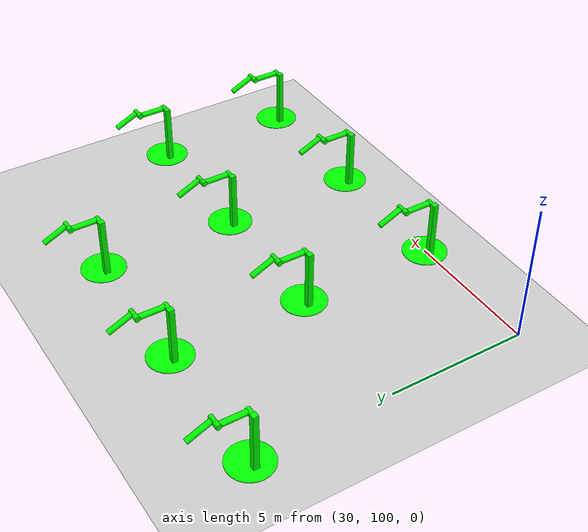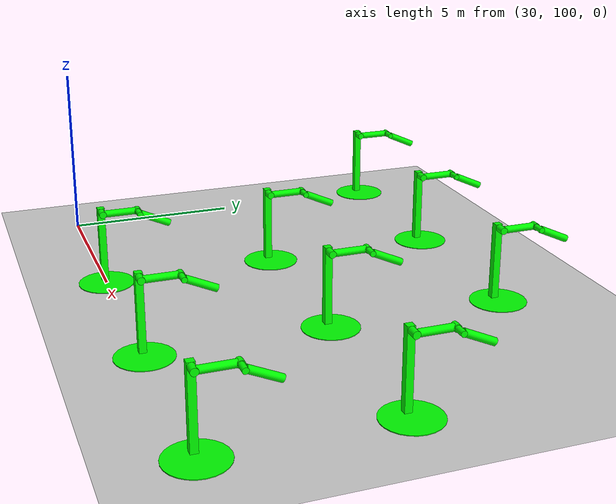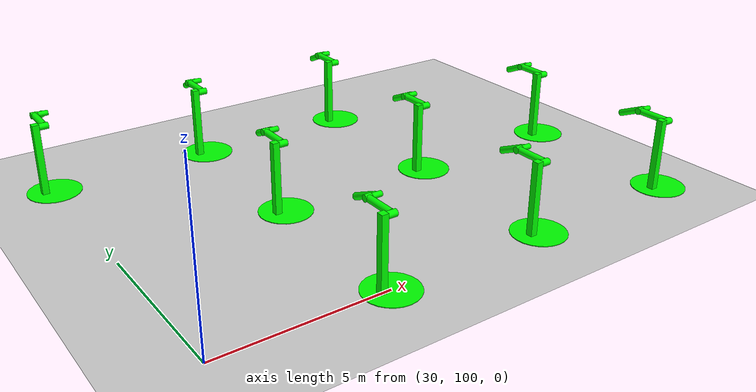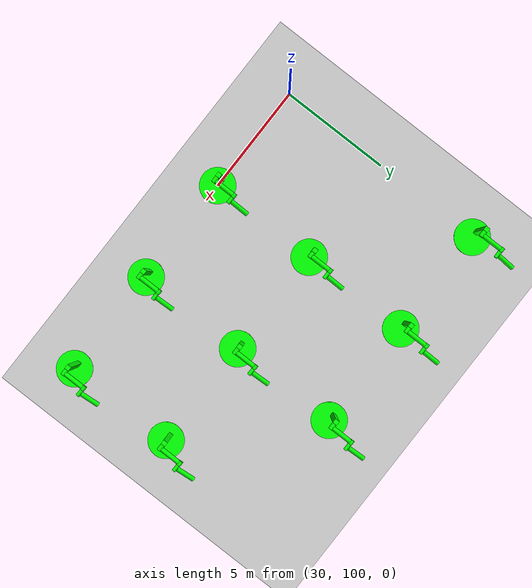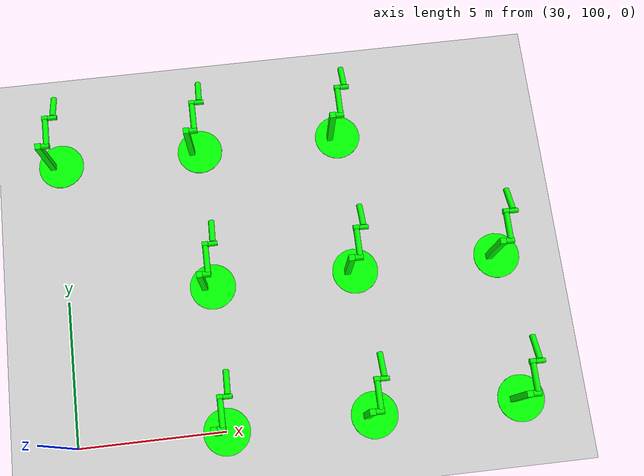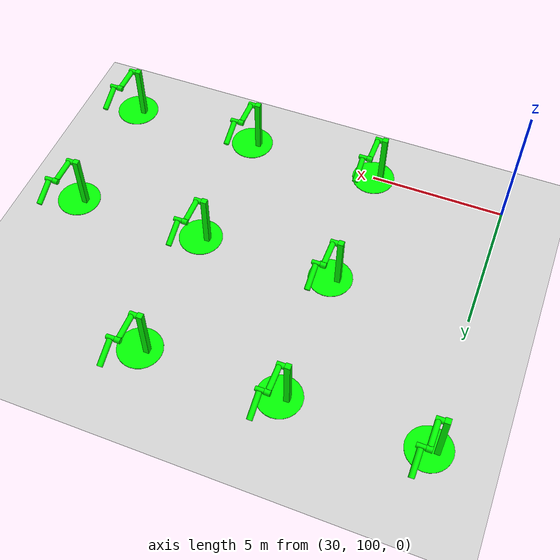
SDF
<sdf version="1.6">
 <world name="double_pendulums">
  <model name="ground_plane">
   <static>true</static>
   <link name="link">
    <collision name="collision">
     <geometry><plane><normal>0 0 1</normal><size>100 100</size></plane></geometry>
    </collision>
    <visual name="visual">
     <geometry><plane><normal>0 0 1</normal><size>100 100</size></plane></geometry>
     <material>
      <ambient>0.8 0.8 0.8 1</ambient>
      <diffuse>0.8 0.8 0.8 1</diffuse>
      <specular>0.8 0.8 0.8 1</specular>
     </material>
    </visual>
   </link>
  </model>
  <model name="dbl_pendulum_517">
   <pose>35 100 0 0 0 0</pose>
   <link name="base">
    <inertial><mass>100</mass></inertial>
    <visual name="vis_plate_on_ground">
     <pose>0 0 0.01 0 0 0</pose>
     <geometry><cylinder><radius>0.8</radius><length>0.02</length></cylinder></geometry>
     <material><ambient>0 1 0 1</ambient><diffuse>0 1 0 1</diffuse><specular>0 1 0 1</specular></material>
    </visual>
    <visual name="vis_pole">
     <pose>-0.275 0 1.1 0 0 0</pose>
     <geometry><box><size>0.2 0.2 2.2</size></box></geometry>
     <material><ambient>0 1 0 1</ambient><diffuse>0 1 0 1</diffuse><specular>0 1 0 1</specular></material>
    </visual>
    <collision name="col_plate_on_ground">
     <pose>0 0 0.01 0 0 0</pose>
     <geometry><cylinder><radius>0.8</radius><length>0.02</length></cylinder></geometry>
    </collision>
    <collision name="col_pole">
     <pose>-0.275 0 1.1 0 0 0</pose>
     <geometry><box><size>0.2 0.2 2.2</size></box></geometry>
    </collision>
   </link>
   <link name="upper_link">
    <pose>0 0 2.1 -1.5708 0 0</pose>
    <inertial><pose>0 0 0.5 0 0 0</pose></inertial>
    <visual name="vis_upper_joint">
     <pose>-0.05 0 0 0 1.5708 0</pose>
     <geometry><cylinder><radius>0.1</radius><length>0.3</length></cylinder></geometry>
     <material><ambient>0 1 0 1</ambient><diffuse>0 1 0 1</diffuse><specular>0 1 0 1</specular></material>
    </visual>
    <visual name="vis_lower_joint">
     <pose>0 0 1.0 0 1.5708 0</pose>
     <geometry><cylinder><radius>0.1</radius><length>0.2</length></cylinder></geometry>
     <material><ambient>0 1 0 1</ambient><diffuse>0 1 0 1</diffuse><specular>0 1 0 1</specular></material>
    </visual>
    <visual name="vis_cylinder">
     <pose>0 0 0.5 0 0 0</pose>
     <geometry><cylinder><radius>0.1</radius><length>0.9</length></cylinder></geometry>
     <material><ambient>0 1 0 1</ambient><diffuse>0 1 0 1</diffuse><specular>0 1 0 1</specular></material>
    </visual>
    <collision name="col_upper_joint">
     <pose>-0.05 0 0 0 1.5708 0</pose>
     <geometry><cylinder><radius>0.1</radius><length>0.3</length></cylinder></geometry>
    </collision>
    <collision name="col_lower_joint">
     <pose>0 0 1.0 0 1.5708 0</pose>
     <geometry><cylinder><radius>0.1</radius><length>0.2</length></cylinder></geometry>
    </collision>
    <collision name="col_cylinder">
     <pose>0 0 0.5 0 0 0</pose>
     <geometry><cylinder><radius>0.1</radius><length>0.9</length></cylinder></geometry>
    </collision>
   </link>
   <link name="lower_link">
    <pose>0.25 1.0 2.1 -2 0 0</pose>
    <inertial><pose>0 0 0.5 0 0 0</pose></inertial>
    <visual name="vis_lower_joint">
     <pose>0 0 0 0 1.5708 0</pose>
     <geometry><cylinder><radius>0.08</radius><length>0.3</length></cylinder></geometry>
     <material><ambient>0 1 0 1</ambient><diffuse>0 1 0 1</diffuse><specular>0 1 0 1</specular></material>
    </visual>
    <visual name="vis_cylinder">
     <pose>0 0 0.5 0 0 0</pose>
     <geometry><cylinder><radius>0.1</radius><length>0.9</length></cylinder></geometry>
     <material><ambient>0 1 0 1</ambient><diffuse>0 1 0 1</diffuse><specular>0 1 0 1</specular></material>
    </visual>
    <collision name="col_lower_joint">
     <pose>0 0 0 0 1.5708 0</pose>
     <geometry><cylinder><radius>0.08</radius><length>0.3</length></cylinder></geometry>
    </collision>
    <collision name="col_cylinder">
     <pose>0 0 0.5 0 0 0</pose>
     <geometry><cylinder><radius>0.1</radius><length>0.9</length></cylinder></geometry>
    </collision>
   </link>
   <joint name="upper_joint" type="revolute">
    <parent>base</parent>
    <child>upper_link</child>
    <axis><xyz>1.0 0 0</xyz></axis>
   </joint>
   <joint name="lower_joint" type="revolute">
    <parent>upper_link</parent>
    <child>lower_link</child>
    <axis><xyz>1.0 0 0</xyz></axis>
   </joint>
  </model>
  <model name="dbl_pendulum_518">
   <pose>40 100 0 0 0 0</pose>
   <link name="base">
    <inertial><mass>100</mass></inertial>
    <visual name="vis_plate_on_ground">
     <pose>0 0 0.01 0 0 0</pose>
     <geometry><cylinder><radius>0.8</radius><length>0.02</length></cylinder></geometry>
     <material><ambient>0 1 0 1</ambient><diffuse>0 1 0 1</diffuse><specular>0 1 0 1</specular></material>
    </visual>
    <visual name="vis_pole">
     <pose>-0.275 0 1.1 0 0 0</pose>
     <geometry><box><size>0.2 0.2 2.2</size></box></geometry>
     <material><ambient>0 1 0 1</ambient><diffuse>0 1 0 1</diffuse><specular>0 1 0 1</specular></material>
    </visual>
    <collision name="col_plate_on_ground">
     <pose>0 0 0.01 0 0 0</pose>
     <geometry><cylinder><radius>0.8</radius><length>0.02</length></cylinder></geometry>
    </collision>
    <collision name="col_pole">
     <pose>-0.275 0 1.1 0 0 0</pose>
     <geometry><box><size>0.2 0.2 2.2</size></box></geometry>
    </collision>
   </link>
   <link name="upper_link">
    <pose>0 0 2.1 -1.5708 0 0</pose>
    <inertial><pose>0 0 0.5 0 0 0</pose></inertial>
    <visual name="vis_upper_joint">
     <pose>-0.05 0 0 0 1.5708 0</pose>
     <geometry><cylinder><radius>0.1</radius><length>0.3</length></cylinder></geometry>
     <material><ambient>0 1 0 1</ambient><diffuse>0 1 0 1</diffuse><specular>0 1 0 1</specular></material>
    </visual>
    <visual name="vis_lower_joint">
     <pose>0 0 1.0 0 1.5708 0</pose>
     <geometry><cylinder><radius>0.1</radius><length>0.2</length></cylinder></geometry>
     <material><ambient>0 1 0 1</ambient><diffuse>0 1 0 1</diffuse><specular>0 1 0 1</specular></material>
    </visual>
    <visual name="vis_cylinder">
     <pose>0 0 0.5 0 0 0</pose>
     <geometry><cylinder><radius>0.1</radius><length>0.9</length></cylinder></geometry>
     <material><ambient>0 1 0 1</ambient><diffuse>0 1 0 1</diffuse><specular>0 1 0 1</specular></material>
    </visual>
    <collision name="col_upper_joint">
     <pose>-0.05 0 0 0 1.5708 0</pose>
     <geometry><cylinder><radius>0.1</radius><length>0.3</length></cylinder></geometry>
    </collision>
    <collision name="col_lower_joint">
     <pose>0 0 1.0 0 1.5708 0</pose>
     <geometry><cylinder><radius>0.1</radius><length>0.2</length></cylinder></geometry>
    </collision>
    <collision name="col_cylinder">
     <pose>0 0 0.5 0 0 0</pose>
     <geometry><cylinder><radius>0.1</radius><length>0.9</length></cylinder></geometry>
    </collision>
   </link>
   <link name="lower_link">
    <pose>0.25 1.0 2.1 -2 0 0</pose>
    <inertial><pose>0 0 0.5 0 0 0</pose></inertial>
    <visual name="vis_lower_joint">
     <pose>0 0 0 0 1.5708 0</pose>
     <geometry><cylinder><radius>0.08</radius><length>0.3</length></cylinder></geometry>
     <material><ambient>0 1 0 1</ambient><diffuse>0 1 0 1</diffuse><specular>0 1 0 1</specular></material>
    </visual>
    <visual name="vis_cylinder">
     <pose>0 0 0.5 0 0 0</pose>
     <geometry><cylinder><radius>0.1</radius><length>0.9</length></cylinder></geometry>
     <material><ambient>0 1 0 1</ambient><diffuse>0 1 0 1</diffuse><specular>0 1 0 1</specular></material>
    </visual>
    <collision name="col_lower_joint">
     <pose>0 0 0 0 1.5708 0</pose>
     <geometry><cylinder><radius>0.08</radius><length>0.3</length></cylinder></geometry>
    </collision>
    <collision name="col_cylinder">
     <pose>0 0 0.5 0 0 0</pose>
     <geometry><cylinder><radius>0.1</radius><length>0.9</length></cylinder></geometry>
    </collision>
   </link>
   <joint name="upper_joint" type="revolute">
    <parent>base</parent>
    <child>upper_link</child>
    <axis><xyz>1.0 0 0</xyz></axis>
   </joint>
   <joint name="lower_joint" type="revolute">
    <parent>upper_link</parent>
    <child>lower_link</child>
    <axis><xyz>1.0 0 0</xyz></axis>
   </joint>
  </model>
  <model name="dbl_pendulum_519">
   <pose>45 100 0 0 0 0</pose>
   <link name="base">
    <inertial><mass>100</mass></inertial>
    <visual name="vis_plate_on_ground">
     <pose>0 0 0.01 0 0 0</pose>
     <geometry><cylinder><radius>0.8</radius><length>0.02</length></cylinder></geometry>
     <material><ambient>0 1 0 1</ambient><diffuse>0 1 0 1</diffuse><specular>0 1 0 1</specular></material>
    </visual>
    <visual name="vis_pole">
     <pose>-0.275 0 1.1 0 0 0</pose>
     <geometry><box><size>0.2 0.2 2.2</size></box></geometry>
     <material><ambient>0 1 0 1</ambient><diffuse>0 1 0 1</diffuse><specular>0 1 0 1</specular></material>
    </visual>
    <collision name="col_plate_on_ground">
     <pose>0 0 0.01 0 0 0</pose>
     <geometry><cylinder><radius>0.8</radius><length>0.02</length></cylinder></geometry>
    </collision>
    <collision name="col_pole">
     <pose>-0.275 0 1.1 0 0 0</pose>
     <geometry><box><size>0.2 0.2 2.2</size></box></geometry>
    </collision>
   </link>
   <link name="upper_link">
    <pose>0 0 2.1 -1.5708 0 0</pose>
    <inertial><pose>0 0 0.5 0 0 0</pose></inertial>
    <visual name="vis_upper_joint">
     <pose>-0.05 0 0 0 1.5708 0</pose>
     <geometry><cylinder><radius>0.1</radius><length>0.3</length></cylinder></geometry>
     <material><ambient>0 1 0 1</ambient><diffuse>0 1 0 1</diffuse><specular>0 1 0 1</specular></material>
    </visual>
    <visual name="vis_lower_joint">
     <pose>0 0 1.0 0 1.5708 0</pose>
     <geometry><cylinder><radius>0.1</radius><length>0.2</length></cylinder></geometry>
     <material><ambient>0 1 0 1</ambient><diffuse>0 1 0 1</diffuse><specular>0 1 0 1</specular></material>
    </visual>
    <visual name="vis_cylinder">
     <pose>0 0 0.5 0 0 0</pose>
     <geometry><cylinder><radius>0.1</radius><length>0.9</length></cylinder></geometry>
     <material><ambient>0 1 0 1</ambient><diffuse>0 1 0 1</diffuse><specular>0 1 0 1</specular></material>
    </visual>
    <collision name="col_upper_joint">
     <pose>-0.05 0 0 0 1.5708 0</pose>
     <geometry><cylinder><radius>0.1</radius><length>0.3</length></cylinder></geometry>
    </collision>
    <collision name="col_lower_joint">
     <pose>0 0 1.0 0 1.5708 0</pose>
     <geometry><cylinder><radius>0.1</radius><length>0.2</length></cylinder></geometry>
    </collision>
    <collision name="col_cylinder">
     <pose>0 0 0.5 0 0 0</pose>
     <geometry><cylinder><radius>0.1</radius><length>0.9</length></cylinder></geometry>
    </collision>
   </link>
   <link name="lower_link">
    <pose>0.25 1.0 2.1 -2 0 0</pose>
    <inertial><pose>0 0 0.5 0 0 0</pose></inertial>
    <visual name="vis_lower_joint">
     <pose>0 0 0 0 1.5708 0</pose>
     <geometry><cylinder><radius>0.08</radius><length>0.3</length></cylinder></geometry>
     <material><ambient>0 1 0 1</ambient><diffuse>0 1 0 1</diffuse><specular>0 1 0 1</specular></material>
    </visual>
    <visual name="vis_cylinder">
     <pose>0 0 0.5 0 0 0</pose>
     <geometry><cylinder><radius>0.1</radius><length>0.9</length></cylinder></geometry>
     <material><ambient>0 1 0 1</ambient><diffuse>0 1 0 1</diffuse><specular>0 1 0 1</specular></material>
    </visual>
    <collision name="col_lower_joint">
     <pose>0 0 0 0 1.5708 0</pose>
     <geometry><cylinder><radius>0.08</radius><length>0.3</length></cylinder></geometry>
    </collision>
    <collision name="col_cylinder">
     <pose>0 0 0.5 0 0 0</pose>
     <geometry><cylinder><radius>0.1</radius><length>0.9</length></cylinder></geometry>
    </collision>
   </link>
   <joint name="upper_joint" type="revolute">
    <parent>base</parent>
    <child>upper_link</child>
    <axis><xyz>1.0 0 0</xyz></axis>
   </joint>
   <joint name="lower_joint" type="revolute">
    <parent>upper_link</parent>
    <child>lower_link</child>
    <axis><xyz>1.0 0 0</xyz></axis>
   </joint>
  </model>
  <model name="dbl_pendulum_542">
   <pose>35 105 0 0 0 0</pose>
   <link name="base">
    <inertial><mass>100</mass></inertial>
    <visual name="vis_plate_on_ground">
     <pose>0 0 0.01 0 0 0</pose>
     <geometry><cylinder><radius>0.8</radius><length>0.02</length></cylinder></geometry>
     <material><ambient>0 1 0 1</ambient><diffuse>0 1 0 1</diffuse><specular>0 1 0 1</specular></material>
    </visual>
    <visual name="vis_pole">
     <pose>-0.275 0 1.1 0 0 0</pose>
     <geometry><box><size>0.2 0.2 2.2</size></box></geometry>
     <material><ambient>0 1 0 1</ambient><diffuse>0 1 0 1</diffuse><specular>0 1 0 1</specular></material>
    </visual>
    <collision name="col_plate_on_ground">
     <pose>0 0 0.01 0 0 0</pose>
     <geometry><cylinder><radius>0.8</radius><length>0.02</length></cylinder></geometry>
    </collision>
    <collision name="col_pole">
     <pose>-0.275 0 1.1 0 0 0</pose>
     <geometry><box><size>0.2 0.2 2.2</size></box></geometry>
    </collision>
   </link>
   <link name="upper_link">
    <pose>0 0 2.1 -1.5708 0 0</pose>
    <inertial><pose>0 0 0.5 0 0 0</pose></inertial>
    <visual name="vis_upper_joint">
     <pose>-0.05 0 0 0 1.5708 0</pose>
     <geometry><cylinder><radius>0.1</radius><length>0.3</length></cylinder></geometry>
     <material><ambient>0 1 0 1</ambient><diffuse>0 1 0 1</diffuse><specular>0 1 0 1</specular></material>
    </visual>
    <visual name="vis_lower_joint">
     <pose>0 0 1.0 0 1.5708 0</pose>
     <geometry><cylinder><radius>0.1</radius><length>0.2</length></cylinder></geometry>
     <material><ambient>0 1 0 1</ambient><diffuse>0 1 0 1</diffuse><specular>0 1 0 1</specular></material>
    </visual>
    <visual name="vis_cylinder">
     <pose>0 0 0.5 0 0 0</pose>
     <geometry><cylinder><radius>0.1</radius><length>0.9</length></cylinder></geometry>
     <material><ambient>0 1 0 1</ambient><diffuse>0 1 0 1</diffuse><specular>0 1 0 1</specular></material>
    </visual>
    <collision name="col_upper_joint">
     <pose>-0.05 0 0 0 1.5708 0</pose>
     <geometry><cylinder><radius>0.1</radius><length>0.3</length></cylinder></geometry>
    </collision>
    <collision name="col_lower_joint">
     <pose>0 0 1.0 0 1.5708 0</pose>
     <geometry><cylinder><radius>0.1</radius><length>0.2</length></cylinder></geometry>
    </collision>
    <collision name="col_cylinder">
     <pose>0 0 0.5 0 0 0</pose>
     <geometry><cylinder><radius>0.1</radius><length>0.9</length></cylinder></geometry>
    </collision>
   </link>
   <link name="lower_link">
    <pose>0.25 1.0 2.1 -2 0 0</pose>
    <inertial><pose>0 0 0.5 0 0 0</pose></inertial>
    <visual name="vis_lower_joint">
     <pose>0 0 0 0 1.5708 0</pose>
     <geometry><cylinder><radius>0.08</radius><length>0.3</length></cylinder></geometry>
     <material><ambient>0 1 0 1</ambient><diffuse>0 1 0 1</diffuse><specular>0 1 0 1</specular></material>
    </visual>
    <visual name="vis_cylinder">
     <pose>0 0 0.5 0 0 0</pose>
     <geometry><cylinder><radius>0.1</radius><length>0.9</length></cylinder></geometry>
     <material><ambient>0 1 0 1</ambient><diffuse>0 1 0 1</diffuse><specular>0 1 0 1</specular></material>
    </visual>
    <collision name="col_lower_joint">
     <pose>0 0 0 0 1.5708 0</pose>
     <geometry><cylinder><radius>0.08</radius><length>0.3</length></cylinder></geometry>
    </collision>
    <collision name="col_cylinder">
     <pose>0 0 0.5 0 0 0</pose>
     <geometry><cylinder><radius>0.1</radius><length>0.9</length></cylinder></geometry>
    </collision>
   </link>
   <joint name="upper_joint" type="revolute">
    <parent>base</parent>
    <child>upper_link</child>
    <axis><xyz>1.0 0 0</xyz></axis>
   </joint>
   <joint name="lower_joint" type="revolute">
    <parent>upper_link</parent>
    <child>lower_link</child>
    <axis><xyz>1.0 0 0</xyz></axis>
   </joint>
  </model>
  <model name="dbl_pendulum_543">
   <pose>40 105 0 0 0 0</pose>
   <link name="base">
    <inertial><mass>100</mass></inertial>
    <visual name="vis_plate_on_ground">
     <pose>0 0 0.01 0 0 0</pose>
     <geometry><cylinder><radius>0.8</radius><length>0.02</length></cylinder></geometry>
     <material><ambient>0 1 0 1</ambient><diffuse>0 1 0 1</diffuse><specular>0 1 0 1</specular></material>
    </visual>
    <visual name="vis_pole">
     <pose>-0.275 0 1.1 0 0 0</pose>
     <geometry><box><size>0.2 0.2 2.2</size></box></geometry>
     <material><ambient>0 1 0 1</ambient><diffuse>0 1 0 1</diffuse><specular>0 1 0 1</specular></material>
    </visual>
    <collision name="col_plate_on_ground">
     <pose>0 0 0.01 0 0 0</pose>
     <geometry><cylinder><radius>0.8</radius><length>0.02</length></cylinder></geometry>
    </collision>
    <collision name="col_pole">
     <pose>-0.275 0 1.1 0 0 0</pose>
     <geometry><box><size>0.2 0.2 2.2</size></box></geometry>
    </collision>
   </link>
   <link name="upper_link">
    <pose>0 0 2.1 -1.5708 0 0</pose>
    <inertial><pose>0 0 0.5 0 0 0</pose></inertial>
    <visual name="vis_upper_joint">
     <pose>-0.05 0 0 0 1.5708 0</pose>
     <geometry><cylinder><radius>0.1</radius><length>0.3</length></cylinder></geometry>
     <material><ambient>0 1 0 1</ambient><diffuse>0 1 0 1</diffuse><specular>0 1 0 1</specular></material>
    </visual>
    <visual name="vis_lower_joint">
     <pose>0 0 1.0 0 1.5708 0</pose>
     <geometry><cylinder><radius>0.1</radius><length>0.2</length></cylinder></geometry>
     <material><ambient>0 1 0 1</ambient><diffuse>0 1 0 1</diffuse><specular>0 1 0 1</specular></material>
    </visual>
    <visual name="vis_cylinder">
     <pose>0 0 0.5 0 0 0</pose>
     <geometry><cylinder><radius>0.1</radius><length>0.9</length></cylinder></geometry>
     <material><ambient>0 1 0 1</ambient><diffuse>0 1 0 1</diffuse><specular>0 1 0 1</specular></material>
    </visual>
    <collision name="col_upper_joint">
     <pose>-0.05 0 0 0 1.5708 0</pose>
     <geometry><cylinder><radius>0.1</radius><length>0.3</length></cylinder></geometry>
    </collision>
    <collision name="col_lower_joint">
     <pose>0 0 1.0 0 1.5708 0</pose>
     <geometry><cylinder><radius>0.1</radius><length>0.2</length></cylinder></geometry>
    </collision>
    <collision name="col_cylinder">
     <pose>0 0 0.5 0 0 0</pose>
     <geometry><cylinder><radius>0.1</radius><length>0.9</length></cylinder></geometry>
    </collision>
   </link>
   <link name="lower_link">
    <pose>0.25 1.0 2.1 -2 0 0</pose>
    <inertial><pose>0 0 0.5 0 0 0</pose></inertial>
    <visual name="vis_lower_joint">
     <pose>0 0 0 0 1.5708 0</pose>
     <geometry><cylinder><radius>0.08</radius><length>0.3</length></cylinder></geometry>
     <material><ambient>0 1 0 1</ambient><diffuse>0 1 0 1</diffuse><specular>0 1 0 1</specular></material>
    </visual>
    <visual name="vis_cylinder">
     <pose>0 0 0.5 0 0 0</pose>
     <geometry><cylinder><radius>0.1</radius><length>0.9</length></cylinder></geometry>
     <material><ambient>0 1 0 1</ambient><diffuse>0 1 0 1</diffuse><specular>0 1 0 1</specular></material>
    </visual>
    <collision name="col_lower_joint">
     <pose>0 0 0 0 1.5708 0</pose>
     <geometry><cylinder><radius>0.08</radius><length>0.3</length></cylinder></geometry>
    </collision>
    <collision name="col_cylinder">
     <pose>0 0 0.5 0 0 0</pose>
     <geometry><cylinder><radius>0.1</radius><length>0.9</length></cylinder></geometry>
    </collision>
   </link>
   <joint name="upper_joint" type="revolute">
    <parent>base</parent>
    <child>upper_link</child>
    <axis><xyz>1.0 0 0</xyz></axis>
   </joint>
   <joint name="lower_joint" type="revolute">
    <parent>upper_link</parent>
    <child>lower_link</child>
    <axis><xyz>1.0 0 0</xyz></axis>
   </joint>
  </model>
  <model name="dbl_pendulum_544">
   <pose>45 105 0 0 0 0</pose>
   <link name="base">
    <inertial><mass>100</mass></inertial>
    <visual name="vis_plate_on_ground">
     <pose>0 0 0.01 0 0 0</pose>
     <geometry><cylinder><radius>0.8</radius><length>0.02</length></cylinder></geometry>
     <material><ambient>0 1 0 1</ambient><diffuse>0 1 0 1</diffuse><specular>0 1 0 1</specular></material>
    </visual>
    <visual name="vis_pole">
     <pose>-0.275 0 1.1 0 0 0</pose>
     <geometry><box><size>0.2 0.2 2.2</size></box></geometry>
     <material><ambient>0 1 0 1</ambient><diffuse>0 1 0 1</diffuse><specular>0 1 0 1</specular></material>
    </visual>
    <collision name="col_plate_on_ground">
     <pose>0 0 0.01 0 0 0</pose>
     <geometry><cylinder><radius>0.8</radius><length>0.02</length></cylinder></geometry>
    </collision>
    <collision name="col_pole">
     <pose>-0.275 0 1.1 0 0 0</pose>
     <geometry><box><size>0.2 0.2 2.2</size></box></geometry>
    </collision>
   </link>
   <link name="upper_link">
    <pose>0 0 2.1 -1.5708 0 0</pose>
    <inertial><pose>0 0 0.5 0 0 0</pose></inertial>
    <visual name="vis_upper_joint">
     <pose>-0.05 0 0 0 1.5708 0</pose>
     <geometry><cylinder><radius>0.1</radius><length>0.3</length></cylinder></geometry>
     <material><ambient>0 1 0 1</ambient><diffuse>0 1 0 1</diffuse><specular>0 1 0 1</specular></material>
    </visual>
    <visual name="vis_lower_joint">
     <pose>0 0 1.0 0 1.5708 0</pose>
     <geometry><cylinder><radius>0.1</radius><length>0.2</length></cylinder></geometry>
     <material><ambient>0 1 0 1</ambient><diffuse>0 1 0 1</diffuse><specular>0 1 0 1</specular></material>
    </visual>
    <visual name="vis_cylinder">
     <pose>0 0 0.5 0 0 0</pose>
     <geometry><cylinder><radius>0.1</radius><length>0.9</length></cylinder></geometry>
     <material><ambient>0 1 0 1</ambient><diffuse>0 1 0 1</diffuse><specular>0 1 0 1</specular></material>
    </visual>
    <collision name="col_upper_joint">
     <pose>-0.05 0 0 0 1.5708 0</pose>
     <geometry><cylinder><radius>0.1</radius><length>0.3</length></cylinder></geometry>
    </collision>
    <collision name="col_lower_joint">
     <pose>0 0 1.0 0 1.5708 0</pose>
     <geometry><cylinder><radius>0.1</radius><length>0.2</length></cylinder></geometry>
    </collision>
    <collision name="col_cylinder">
     <pose>0 0 0.5 0 0 0</pose>
     <geometry><cylinder><radius>0.1</radius><length>0.9</length></cylinder></geometry>
    </collision>
   </link>
   <link name="lower_link">
    <pose>0.25 1.0 2.1 -2 0 0</pose>
    <inertial><pose>0 0 0.5 0 0 0</pose></inertial>
    <visual name="vis_lower_joint">
     <pose>0 0 0 0 1.5708 0</pose>
     <geometry><cylinder><radius>0.08</radius><length>0.3</length></cylinder></geometry>
     <material><ambient>0 1 0 1</ambient><diffuse>0 1 0 1</diffuse><specular>0 1 0 1</specular></material>
    </visual>
    <visual name="vis_cylinder">
     <pose>0 0 0.5 0 0 0</pose>
     <geometry><cylinder><radius>0.1</radius><length>0.9</length></cylinder></geometry>
     <material><ambient>0 1 0 1</ambient><diffuse>0 1 0 1</diffuse><specular>0 1 0 1</specular></material>
    </visual>
    <collision name="col_lower_joint">
     <pose>0 0 0 0 1.5708 0</pose>
     <geometry><cylinder><radius>0.08</radius><length>0.3</length></cylinder></geometry>
    </collision>
    <collision name="col_cylinder">
     <pose>0 0 0.5 0 0 0</pose>
     <geometry><cylinder><radius>0.1</radius><length>0.9</length></cylinder></geometry>
    </collision>
   </link>
   <joint name="upper_joint" type="revolute">
    <parent>base</parent>
    <child>upper_link</child>
    <axis><xyz>1.0 0 0</xyz></axis>
   </joint>
   <joint name="lower_joint" type="revolute">
    <parent>upper_link</parent>
    <child>lower_link</child>
    <axis><xyz>1.0 0 0</xyz></axis>
   </joint>
  </model>
  <model name="dbl_pendulum_566">
   <pose>30 110 0 0 0 0</pose>
   <link name="base">
    <inertial><mass>100</mass></inertial>
    <visual name="vis_plate_on_ground">
     <pose>0 0 0.01 0 0 0</pose>
     <geometry><cylinder><radius>0.8</radius><length>0.02</length></cylinder></geometry>
     <material><ambient>0 1 0 1</ambient><diffuse>0 1 0 1</diffuse><specular>0 1 0 1</specular></material>
    </visual>
    <visual name="vis_pole">
     <pose>-0.275 0 1.1 0 0 0</pose>
     <geometry><box><size>0.2 0.2 2.2</size></box></geometry>
     <material><ambient>0 1 0 1</ambient><diffuse>0 1 0 1</diffuse><specular>0 1 0 1</specular></material>
    </visual>
    <collision name="col_plate_on_ground">
     <pose>0 0 0.01 0 0 0</pose>
     <geometry><cylinder><radius>0.8</radius><length>0.02</length></cylinder></geometry>
    </collision>
    <collision name="col_pole">
     <pose>-0.275 0 1.1 0 0 0</pose>
     <geometry><box><size>0.2 0.2 2.2</size></box></geometry>
    </collision>
   </link>
   <link name="upper_link">
    <pose>0 0 2.1 -1.5708 0 0</pose>
    <inertial><pose>0 0 0.5 0 0 0</pose></inertial>
    <visual name="vis_upper_joint">
     <pose>-0.05 0 0 0 1.5708 0</pose>
     <geometry><cylinder><radius>0.1</radius><length>0.3</length></cylinder></geometry>
     <material><ambient>0 1 0 1</ambient><diffuse>0 1 0 1</diffuse><specular>0 1 0 1</specular></material>
    </visual>
    <visual name="vis_lower_joint">
     <pose>0 0 1.0 0 1.5708 0</pose>
     <geometry><cylinder><radius>0.1</radius><length>0.2</length></cylinder></geometry>
     <material><ambient>0 1 0 1</ambient><diffuse>0 1 0 1</diffuse><specular>0 1 0 1</specular></material>
    </visual>
    <visual name="vis_cylinder">
     <pose>0 0 0.5 0 0 0</pose>
     <geometry><cylinder><radius>0.1</radius><length>0.9</length></cylinder></geometry>
     <material><ambient>0 1 0 1</ambient><diffuse>0 1 0 1</diffuse><specular>0 1 0 1</specular></material>
    </visual>
    <collision name="col_upper_joint">
     <pose>-0.05 0 0 0 1.5708 0</pose>
     <geometry><cylinder><radius>0.1</radius><length>0.3</length></cylinder></geometry>
    </collision>
    <collision name="col_lower_joint">
     <pose>0 0 1.0 0 1.5708 0</pose>
     <geometry><cylinder><radius>0.1</radius><length>0.2</length></cylinder></geometry>
    </collision>
    <collision name="col_cylinder">
     <pose>0 0 0.5 0 0 0</pose>
     <geometry><cylinder><radius>0.1</radius><length>0.9</length></cylinder></geometry>
    </collision>
   </link>
   <link name="lower_link">
    <pose>0.25 1.0 2.1 -2 0 0</pose>
    <inertial><pose>0 0 0.5 0 0 0</pose></inertial>
    <visual name="vis_lower_joint">
     <pose>0 0 0 0 1.5708 0</pose>
     <geometry><cylinder><radius>0.08</radius><length>0.3</length></cylinder></geometry>
     <material><ambient>0 1 0 1</ambient><diffuse>0 1 0 1</diffuse><specular>0 1 0 1</specular></material>
    </visual>
    <visual name="vis_cylinder">
     <pose>0 0 0.5 0 0 0</pose>
     <geometry><cylinder><radius>0.1</radius><length>0.9</length></cylinder></geometry>
     <material><ambient>0 1 0 1</ambient><diffuse>0 1 0 1</diffuse><specular>0 1 0 1</specular></material>
    </visual>
    <collision name="col_lower_joint">
     <pose>0 0 0 0 1.5708 0</pose>
     <geometry><cylinder><radius>0.08</radius><length>0.3</length></cylinder></geometry>
    </collision>
    <collision name="col_cylinder">
     <pose>0 0 0.5 0 0 0</pose>
     <geometry><cylinder><radius>0.1</radius><length>0.9</length></cylinder></geometry>
    </collision>
   </link>
   <joint name="upper_joint" type="revolute">
    <parent>base</parent>
    <child>upper_link</child>
    <axis><xyz>1.0 0 0</xyz></axis>
   </joint>
   <joint name="lower_joint" type="revolute">
    <parent>upper_link</parent>
    <child>lower_link</child>
    <axis><xyz>1.0 0 0</xyz></axis>
   </joint>
  </model>
  <model name="dbl_pendulum_567">
   <pose>35 110 0 0 0 0</pose>
   <link name="base">
    <inertial><mass>100</mass></inertial>
    <visual name="vis_plate_on_ground">
     <pose>0 0 0.01 0 0 0</pose>
     <geometry><cylinder><radius>0.8</radius><length>0.02</length></cylinder></geometry>
     <material><ambient>0 1 0 1</ambient><diffuse>0 1 0 1</diffuse><specular>0 1 0 1</specular></material>
    </visual>
    <visual name="vis_pole">
     <pose>-0.275 0 1.1 0 0 0</pose>
     <geometry><box><size>0.2 0.2 2.2</size></box></geometry>
     <material><ambient>0 1 0 1</ambient><diffuse>0 1 0 1</diffuse><specular>0 1 0 1</specular></material>
    </visual>
    <collision name="col_plate_on_ground">
     <pose>0 0 0.01 0 0 0</pose>
     <geometry><cylinder><radius>0.8</radius><length>0.02</length></cylinder></geometry>
    </collision>
    <collision name="col_pole">
     <pose>-0.275 0 1.1 0 0 0</pose>
     <geometry><box><size>0.2 0.2 2.2</size></box></geometry>
    </collision>
   </link>
   <link name="upper_link">
    <pose>0 0 2.1 -1.5708 0 0</pose>
    <inertial><pose>0 0 0.5 0 0 0</pose></inertial>
    <visual name="vis_upper_joint">
     <pose>-0.05 0 0 0 1.5708 0</pose>
     <geometry><cylinder><radius>0.1</radius><length>0.3</length></cylinder></geometry>
     <material><ambient>0 1 0 1</ambient><diffuse>0 1 0 1</diffuse><specular>0 1 0 1</specular></material>
    </visual>
    <visual name="vis_lower_joint">
     <pose>0 0 1.0 0 1.5708 0</pose>
     <geometry><cylinder><radius>0.1</radius><length>0.2</length></cylinder></geometry>
     <material><ambient>0 1 0 1</ambient><diffuse>0 1 0 1</diffuse><specular>0 1 0 1</specular></material>
    </visual>
    <visual name="vis_cylinder">
     <pose>0 0 0.5 0 0 0</pose>
     <geometry><cylinder><radius>0.1</radius><length>0.9</length></cylinder></geometry>
     <material><ambient>0 1 0 1</ambient><diffuse>0 1 0 1</diffuse><specular>0 1 0 1</specular></material>
    </visual>
    <collision name="col_upper_joint">
     <pose>-0.05 0 0 0 1.5708 0</pose>
     <geometry><cylinder><radius>0.1</radius><length>0.3</length></cylinder></geometry>
    </collision>
    <collision name="col_lower_joint">
     <pose>0 0 1.0 0 1.5708 0</pose>
     <geometry><cylinder><radius>0.1</radius><length>0.2</length></cylinder></geometry>
    </collision>
    <collision name="col_cylinder">
     <pose>0 0 0.5 0 0 0</pose>
     <geometry><cylinder><radius>0.1</radius><length>0.9</length></cylinder></geometry>
    </collision>
   </link>
   <link name="lower_link">
    <pose>0.25 1.0 2.1 -2 0 0</pose>
    <inertial><pose>0 0 0.5 0 0 0</pose></inertial>
    <visual name="vis_lower_joint">
     <pose>0 0 0 0 1.5708 0</pose>
     <geometry><cylinder><radius>0.08</radius><length>0.3</length></cylinder></geometry>
     <material><ambient>0 1 0 1</ambient><diffuse>0 1 0 1</diffuse><specular>0 1 0 1</specular></material>
    </visual>
    <visual name="vis_cylinder">
     <pose>0 0 0.5 0 0 0</pose>
     <geometry><cylinder><radius>0.1</radius><length>0.9</length></cylinder></geometry>
     <material><ambient>0 1 0 1</ambient><diffuse>0 1 0 1</diffuse><specular>0 1 0 1</specular></material>
    </visual>
    <collision name="col_lower_joint">
     <pose>0 0 0 0 1.5708 0</pose>
     <geometry><cylinder><radius>0.08</radius><length>0.3</length></cylinder></geometry>
    </collision>
    <collision name="col_cylinder">
     <pose>0 0 0.5 0 0 0</pose>
     <geometry><cylinder><radius>0.1</radius><length>0.9</length></cylinder></geometry>
    </collision>
   </link>
   <joint name="upper_joint" type="revolute">
    <parent>base</parent>
    <child>upper_link</child>
    <axis><xyz>1.0 0 0</xyz></axis>
   </joint>
   <joint name="lower_joint" type="revolute">
    <parent>upper_link</parent>
    <child>lower_link</child>
    <axis><xyz>1.0 0 0</xyz></axis>
   </joint>
  </model>
  <model name="dbl_pendulum_568">
   <pose>40 110 0 0 0 0</pose>
   <link name="base">
    <inertial><mass>100</mass></inertial>
    <visual name="vis_plate_on_ground">
     <pose>0 0 0.01 0 0 0</pose>
     <geometry><cylinder><radius>0.8</radius><length>0.02</length></cylinder></geometry>
     <material><ambient>0 1 0 1</ambient><diffuse>0 1 0 1</diffuse><specular>0 1 0 1</specular></material>
    </visual>
    <visual name="vis_pole">
     <pose>-0.275 0 1.1 0 0 0</pose>
     <geometry><box><size>0.2 0.2 2.2</size></box></geometry>
     <material><ambient>0 1 0 1</ambient><diffuse>0 1 0 1</diffuse><specular>0 1 0 1</specular></material>
    </visual>
    <collision name="col_plate_on_ground">
     <pose>0 0 0.01 0 0 0</pose>
     <geometry><cylinder><radius>0.8</radius><length>0.02</length></cylinder></geometry>
    </collision>
    <collision name="col_pole">
     <pose>-0.275 0 1.1 0 0 0</pose>
     <geometry><box><size>0.2 0.2 2.2</size></box></geometry>
    </collision>
   </link>
   <link name="upper_link">
    <pose>0 0 2.1 -1.5708 0 0</pose>
    <inertial><pose>0 0 0.5 0 0 0</pose></inertial>
    <visual name="vis_upper_joint">
     <pose>-0.05 0 0 0 1.5708 0</pose>
     <geometry><cylinder><radius>0.1</radius><length>0.3</length></cylinder></geometry>
     <material><ambient>0 1 0 1</ambient><diffuse>0 1 0 1</diffuse><specular>0 1 0 1</specular></material>
    </visual>
    <visual name="vis_lower_joint">
     <pose>0 0 1.0 0 1.5708 0</pose>
     <geometry><cylinder><radius>0.1</radius><length>0.2</length></cylinder></geometry>
     <material><ambient>0 1 0 1</ambient><diffuse>0 1 0 1</diffuse><specular>0 1 0 1</specular></material>
    </visual>
    <visual name="vis_cylinder">
     <pose>0 0 0.5 0 0 0</pose>
     <geometry><cylinder><radius>0.1</radius><length>0.9</length></cylinder></geometry>
     <material><ambient>0 1 0 1</ambient><diffuse>0 1 0 1</diffuse><specular>0 1 0 1</specular></material>
    </visual>
    <collision name="col_upper_joint">
     <pose>-0.05 0 0 0 1.5708 0</pose>
     <geometry><cylinder><radius>0.1</radius><length>0.3</length></cylinder></geometry>
    </collision>
    <collision name="col_lower_joint">
     <pose>0 0 1.0 0 1.5708 0</pose>
     <geometry><cylinder><radius>0.1</radius><length>0.2</length></cylinder></geometry>
    </collision>
    <collision name="col_cylinder">
     <pose>0 0 0.5 0 0 0</pose>
     <geometry><cylinder><radius>0.1</radius><length>0.9</length></cylinder></geometry>
    </collision>
   </link>
   <link name="lower_link">
    <pose>0.25 1.0 2.1 -2 0 0</pose>
    <inertial><pose>0 0 0.5 0 0 0</pose></inertial>
    <visual name="vis_lower_joint">
     <pose>0 0 0 0 1.5708 0</pose>
     <geometry><cylinder><radius>0.08</radius><length>0.3</length></cylinder></geometry>
     <material><ambient>0 1 0 1</ambient><diffuse>0 1 0 1</diffuse><specular>0 1 0 1</specular></material>
    </visual>
    <visual name="vis_cylinder">
     <pose>0 0 0.5 0 0 0</pose>
     <geometry><cylinder><radius>0.1</radius><length>0.9</length></cylinder></geometry>
     <material><ambient>0 1 0 1</ambient><diffuse>0 1 0 1</diffuse><specular>0 1 0 1</specular></material>
    </visual>
    <collision name="col_lower_joint">
     <pose>0 0 0 0 1.5708 0</pose>
     <geometry><cylinder><radius>0.08</radius><length>0.3</length></cylinder></geometry>
    </collision>
    <collision name="col_cylinder">
     <pose>0 0 0.5 0 0 0</pose>
     <geometry><cylinder><radius>0.1</radius><length>0.9</length></cylinder></geometry>
    </collision>
   </link>
   <joint name="upper_joint" type="revolute">
    <parent>base</parent>
    <child>upper_link</child>
    <axis><xyz>1.0 0 0</xyz></axis>
   </joint>
   <joint name="lower_joint" type="revolute">
    <parent>upper_link</parent>
    <child>lower_link</child>
    <axis><xyz>1.0 0 0</xyz></axis>
   </joint>
  </model>
 </world>
</sdf>
